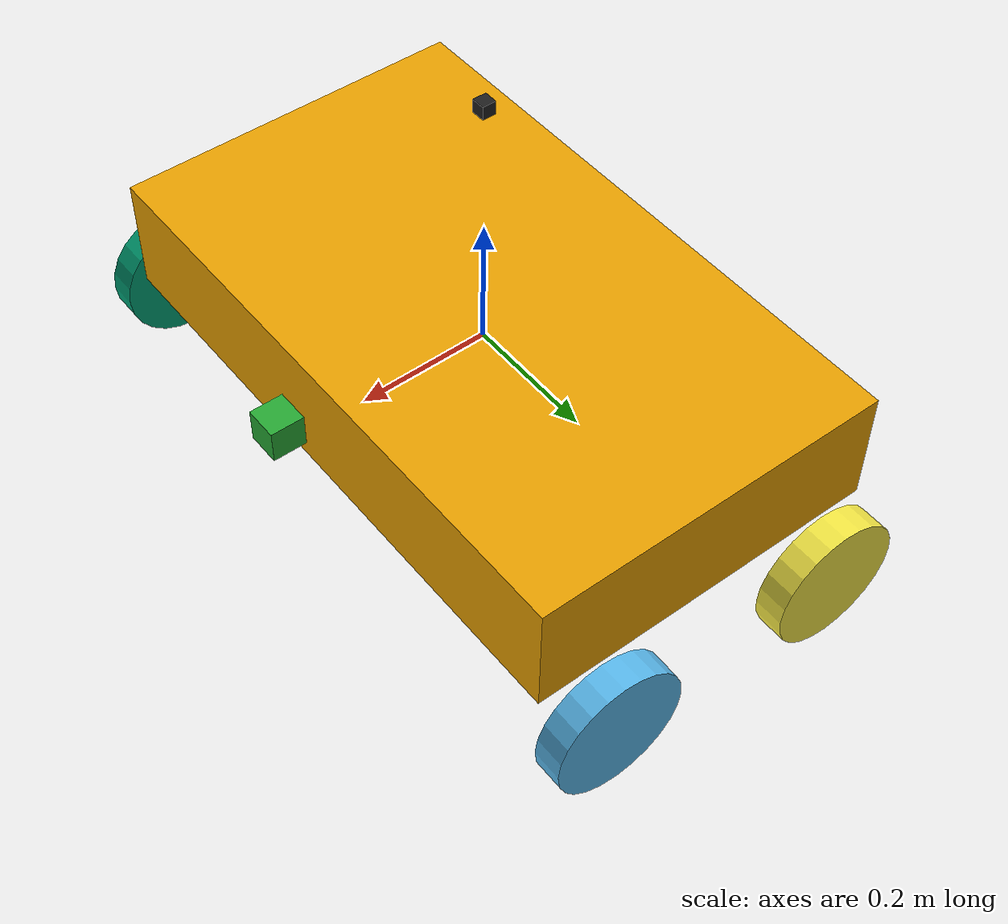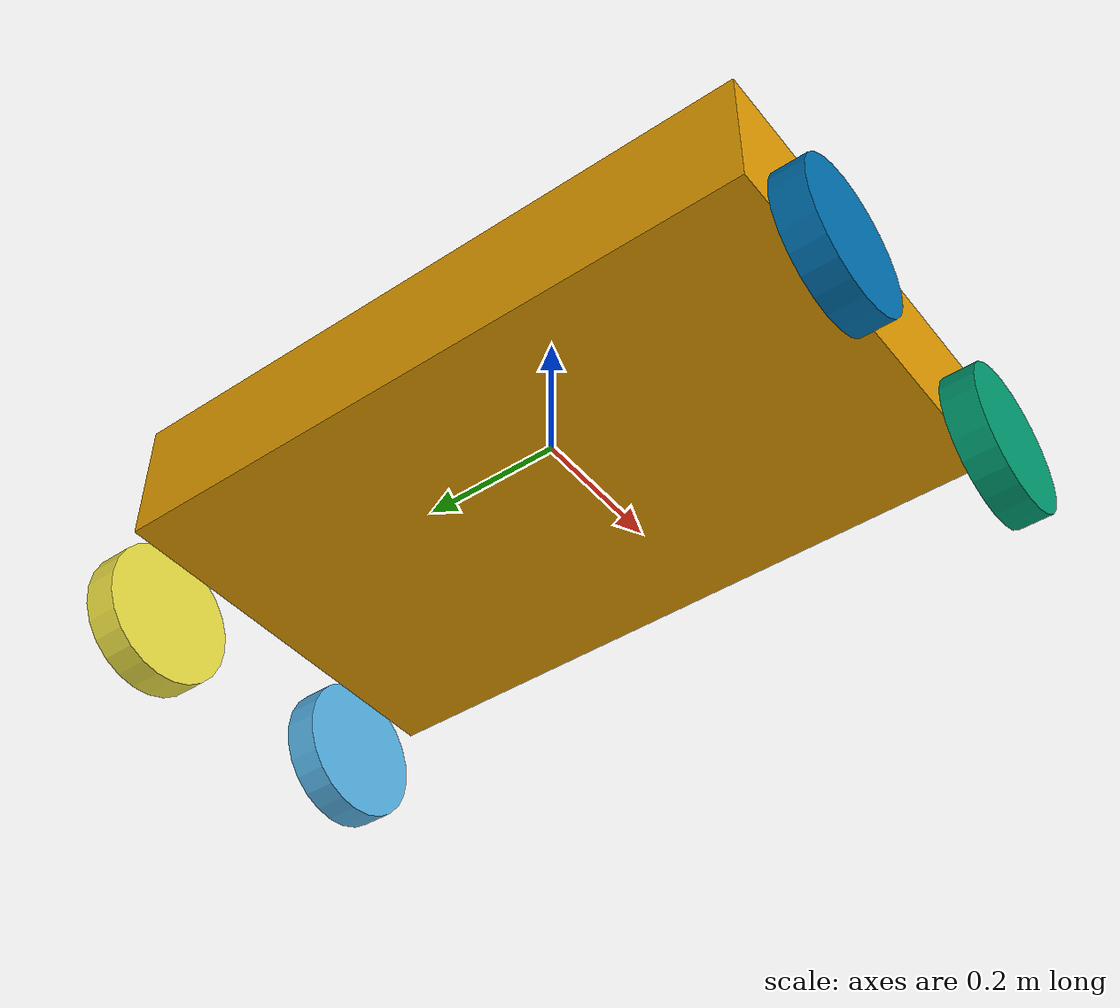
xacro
<?xml version="1.0"?>
<robot xmlns:xacro="http://www.ros.org/wiki/xacro" name="my_robot">
    <xacro:property name="cameraSize" value="0.05"/>
    <xacro:property name="cameraMass" value="0.1"/>

    <xacro:property name="body_length" value="0.546" />
    <xacro:property name="body_width" value="0.926" />
    <xacro:property name="body_height" value="0.180" />
    <xacro:property name="wheel_width" value="0.045" />
    <xacro:property name="wheel_radius" value="0.100" />
    <xacro:property name="wheel_mass" value="2"/>
    <xacro:property name="body_mass" value="10"/>

    <!--DEFINITION DE MACRO-->
    <xacro:macro name="create_wheel" params="position">

        <link name="${position}_wheel">
                <visual>
                    <xacro:if value="${position=='fl'}">
                        <origin xyz="0.0 ${wheel_width/2} 0.0" rpy="${pi/2} 0.0 0.0" />
                    </xacro:if>

                    <xacro:if value="${position=='fr'}">
                        <origin xyz="0.0 ${-wheel_width/2} 0.0" rpy="${pi/2} 0.0 0.0" />
                    </xacro:if>

                    <xacro:if value="${position=='rl'}">
                        <origin xyz="0.0 ${wheel_width/2} 0.0" rpy="${pi/2} 0.0 0.0" />
                    </xacro:if>

                    <xacro:if value="${position=='rr'}">
                        <origin xyz="0.0 ${-wheel_width/2} 0.0" rpy="${pi/2} 0.0 0.0" />
                    </xacro:if>

                    <geometry>
                        <cylinder radius="${wheel_radius}" length="${wheel_width}"/>
                    </geometry>
                </visual>

		<collision>
                    <xacro:if value="${position=='fl'}">
                        <origin xyz="0.0 ${wheel_width/2} 0.0" rpy="${pi/2} 0.0 0.0" />
                    </xacro:if>

                    <xacro:if value="${position=='fr'}">
                        <origin xyz="0.0 ${-wheel_width/2} 0.0" rpy="${pi/2} 0.0 0.0" />
                    </xacro:if>

                    <xacro:if value="${position=='rl'}">
                        <origin xyz="0.0 ${wheel_width/2} 0.0" rpy="${pi/2} 0.0 0.0" />
                    </xacro:if>

                    <xacro:if value="${position=='rr'}">
                        <origin xyz="0.0 ${-wheel_width/2} 0.0" rpy="${pi/2} 0.0 0.0" />
                    </xacro:if>

                    <geometry>
                        <cylinder radius="${wheel_radius}" length="${wheel_width}"/>
	            </geometry>
		</collision>

            <xacro:cylinder_inertial mass="${wheel_mass}" r="${wheel_radius}" h="${wheel_width}"/>
            </link>

            <joint name="${position}_wheel_joint" type="continuous">
                <xacro:if value="${position=='fl'}">
                    <origin xyz="${0.1965} ${0.510-wheel_width/2} ${-body_height/2-0.057}" />
                </xacro:if>

                <xacro:if value="${position=='fr'}">
                    <origin xyz="${0.1965} ${-0.510+wheel_width/2} ${-body_height/2-0.057}" />
                </xacro:if>

                <xacro:if value="${position=='rl'}">
                    <origin xyz="${-0.175} ${0.510-wheel_width/2} ${-body_height/2-0.057}" />
                </xacro:if>

                <xacro:if value="${position=='rr'}">
                    <origin xyz="${-0.175} ${-0.510+wheel_width/2} ${-body_height/2-0.057}" />
                </xacro:if>

                <!--origin xyz="0.4 ${body_width/2} 0.0"-->
                <!--xacro:set_bl_as_parent_link-->
                <parent link="base_link"/>
                <child link="${position}_wheel"/>
                <axis xyz="0.0 1.0 0.0" />
            </joint>
    </xacro:macro>

        <!-- MACROS -->
    <xacro:macro name="box_inertial" params="mass l w h">
        <inertial>
                <mass value="${mass}" />
                <inertia ixx="${mass/3*(w*w + h*h)}" ixy="${mass/4*l*w}" ixz="${mass/4*l*h}"
                     iyy="${mass/3*(l*l + h*h)}" iyz="${mass/4*w*h}"
                     izz="${mass/3*(l*l + w*w)}" />
        </inertial>
    </xacro:macro>
    <xacro:macro name="cylinder_inertial" params="mass r h">
        <inertial>
                <mass value="${mass}" />
                <inertia ixx="${mass/12*(3*r*r + h*h)}" ixy="0.0" ixz="0.0"
                     iyy="${mass/12*(3*r*r + h*h)}" iyz="0.0"
                     izz="${mass/2*(r*r)}" />
        </inertial>
    </xacro:macro>
    <xacro:macro name="spherus_inertial" params="mass r">
        <inertial>
                <mass value="${mass}" />
                <inertia ixx="${mass/5*2*(r*r)}" ixy="0.0" ixz="0.0"
                     iyy="${mass/5*2*(r*r)}" iyz="0.0"
                     izz="${mass/5*2*(r*r)}" />
        </inertial>
    </xacro:macro>

    <!--SECTION PRINCIPALE-->
    <link name="base_link">
        <visual>
            <geometry>
                <box size="${body_length} ${body_width} ${body_height}" />
            </geometry>
        </visual>
    <xacro:box_inertial mass="${body_mass}" l="${body_length}" w="${body_width}" h="${body_height}"/>
    </link>
    <xacro:create_wheel position="fl"/>
    <xacro:create_wheel position="fr"/>
    <xacro:create_wheel position="rl"/>
    <xacro:create_wheel position="rr"/>

    <link name="camera1">
      <collision>
        <origin xyz="0 0 0" rpy="0 0 0"/>
        <geometry>
          <box size="${cameraSize} ${cameraSize} ${cameraSize}"/>
        </geometry>
      </collision>

      <visual>
        <origin xyz="0 0 0" rpy="0 0 0"/>
        <geometry>
          <box size="${cameraSize} ${cameraSize} ${cameraSize}"/>
        </geometry>
        <material name="green"/>
      </visual>

      <inertial>
        <mass value="${cameraMass}" />
        <origin xyz="0 0 0" rpy="0 0 0"/>
        <box_inertia m="${cameraMass}" x="${cameraSize}" y="${cameraSize}" z="${cameraSize}" />
        <inertia ixx="1e-6" ixy="0" ixz="0" iyy="1e-6" iyz="0" izz="1e-6" />
      </inertial>
    </link>

    <joint name="camera1_joint" type="fixed">
      <axis xyz="0 1 0" />
      <origin xyz="0.333 0 0.04061" rpy="0 ${pi/2} 0"/>
      <parent link="base_link"/>
      <child link="camera1"/>
    </joint>

    <link name="imu">
      <collision>
        <origin xyz="0 0 0" rpy="0 0 0"/>
        <geometry>
          <box size="0.02 0.02 0.02"/>
        </geometry>
      </collision>

      <visual>
        <origin xyz="0 0 0.2" rpy="0 0 0"/>
        <geometry>
          <box size="0.02 0.02 0.02"/>
        </geometry>
        <material name="black"/>
      </visual>

      <inertial>
        <mass value="${cameraMass}" />
        <origin xyz="0 0 0" rpy="0 0 0"/>
        <box_inertia m="${cameraMass}" x="0.02" y="0.02" z="0.02" />
        <inertia ixx="1e-6" ixy="0" ixz="0" iyy="1e-6" iyz="0" izz="1e-6" />
      </inertial>
    </link>

    <joint name="imu_joint" type="fixed">
      <axis xyz="0 0 0" />
      <origin xyz="0 0 0.2" rpy="0 0 0"/>
      <parent link="base_link"/>
      <child link="imu"/>
    </joint>
</robot>
